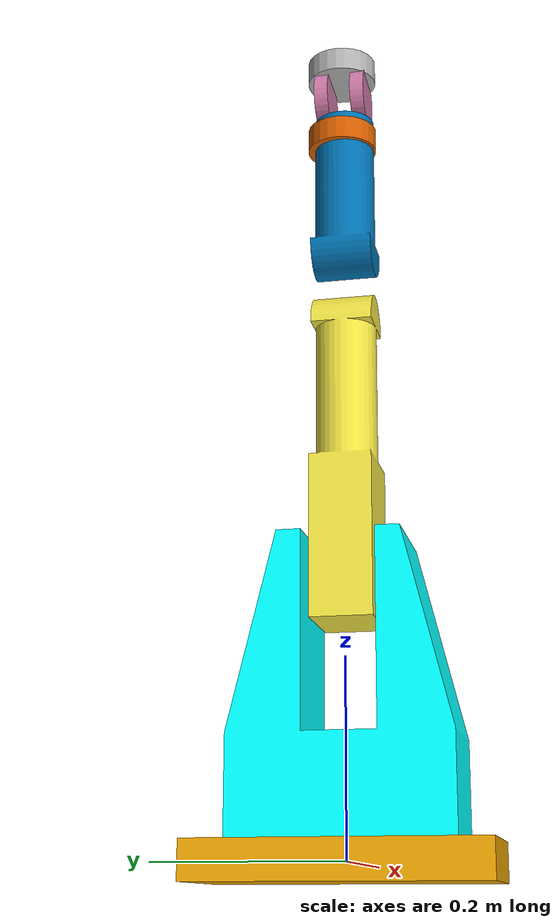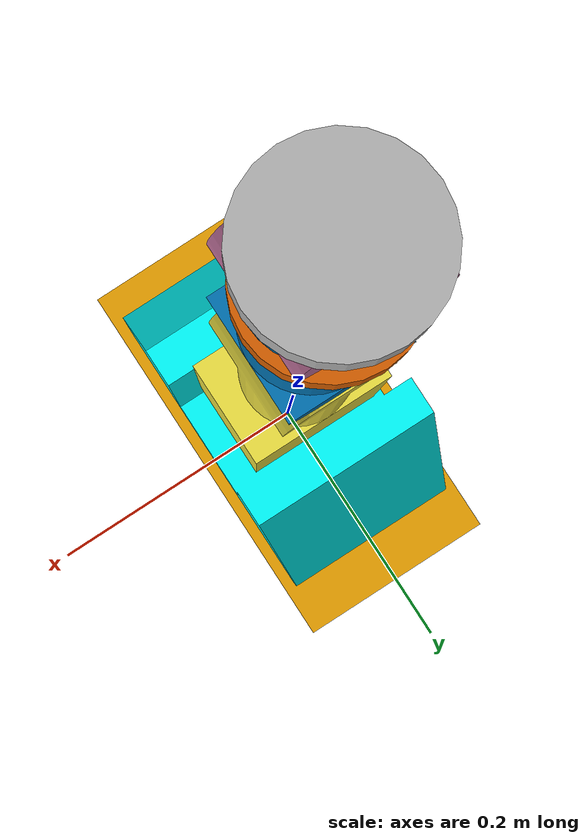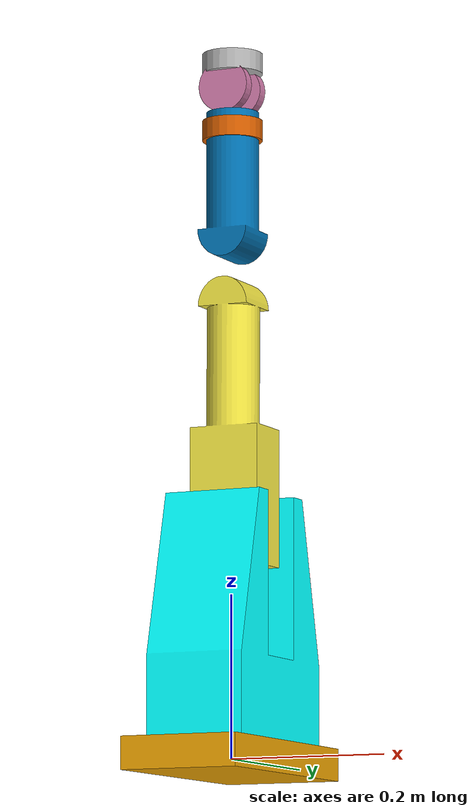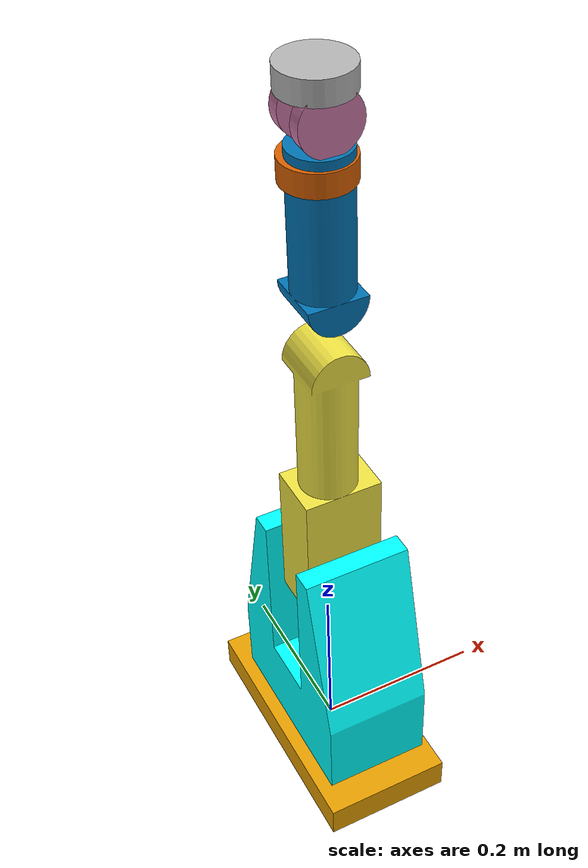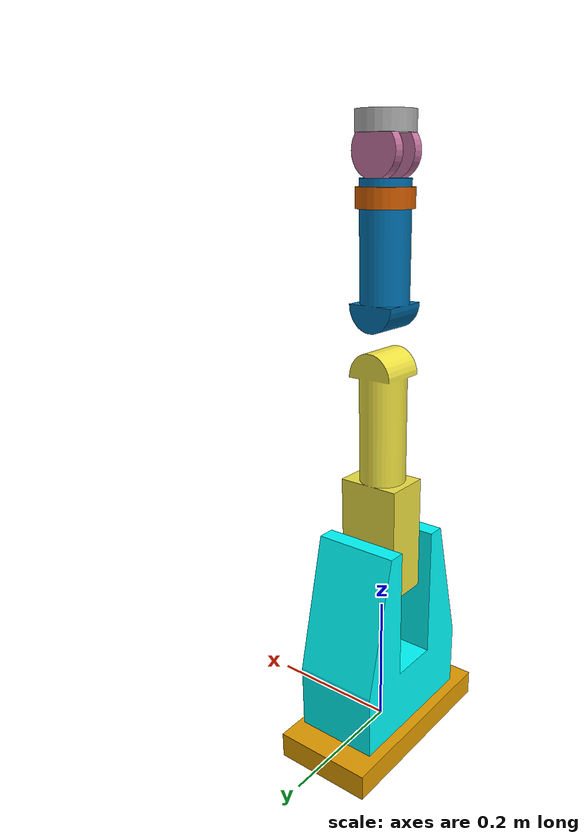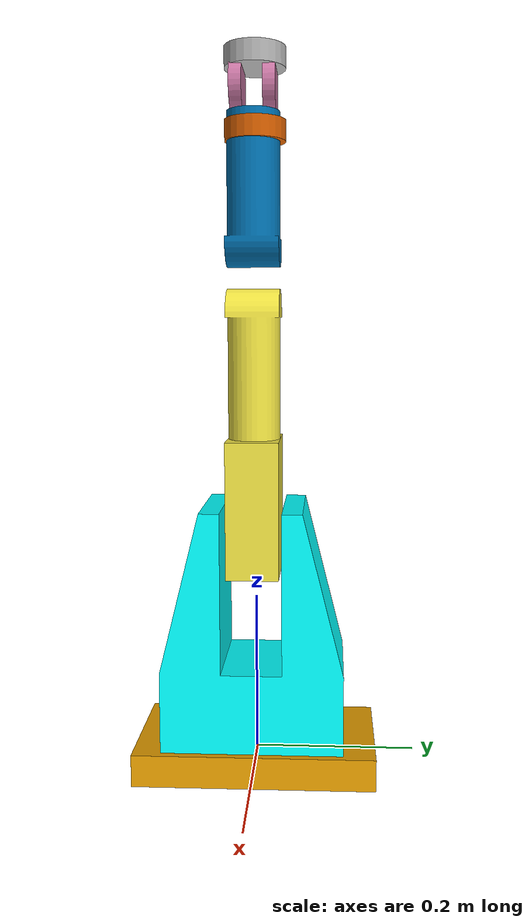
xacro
<?xml version="1.0"?>
<robot xmlns:xacro="http://www.ros.org/wiki/xacro" name="zebra_zero">
  <xacro:arg name="ros2_control_hardware_type" default="zebra" />
  <xacro:macro name="ros2_control" params="ros2_control_hardware_type">
    <xacro:if value="${ros2_control_hardware_type == 'mock_components'}">
      <plugin>mock_components/GenericSystem</plugin>
      <param name="calculate_dynamics">true</param>
    </xacro:if>
    <xacro:if value="${ros2_control_hardware_type == 'zebra'}">
      <plugin>zebra_zero/RobotSystem</plugin>
    </xacro:if>
  </xacro:macro>
  <link name="base_link">
    <visual>
      <origin rpy="0 0 0" xyz="0 0 0"/>
      <geometry>
        <box size="0.15 0.04 0.3" />
      </geometry>
    </visual>
    <collision>
      <origin rpy="0 0 0" xyz="0 0 0"/>
      <geometry>
        <box size="0.15 0.04 0.3" />
      </geometry>
    </collision>
    <inertial>
      <mass value="1"/>
      <inertia ixx="1.0" ixy="0.0" ixz="0.0" iyy="1.0" iyz="0.0" izz="1.0"/>
    </inertial>
  </link>
  <link name="world"/>
  <joint name="base_joint" type="fixed">
    <parent link="world"/>
    <child link="base_link"/>
    <origin rpy="-1.57 0 0" xyz="0 0 0"/>
    <axis xyz="0 0 1"/>
  </joint>
  <link name="first_link">
    <visual>
      <origin rpy="0 0 1.57" xyz="0.04 -0.05 -0.1"/>
      <geometry>
        <mesh filename="package://zebra_zero/urdf/ZebraBase.stl" scale="0.005 0.005 0.005"/>
      </geometry>
      <material name="blue">
        <color rgba="0 1.0 1.0 1.0"/>
      </material>
    </visual>
    <collision>
      <origin rpy="0 0 1.57" xyz="0.04 -0.05 -0.1"/>
      <geometry>
        <mesh filename="package://zebra_zero/urdf/ZebraBase.stl" scale="0.005 0.005 0.005"/>
      </geometry>
    </collision>
    <inertial>
      <mass value="1"/>
      <inertia ixx="1.0" ixy="0.0" ixz="0.0" iyy="1.0" iyz="0.0" izz="1.0"/>
    </inertial>
  </link>
  <joint name="first_joint" type="revolute">
    <parent link="base_link"/>
    <child link="first_link"/>
    <origin rpy="1.57 0 0" xyz="0 -0.045 0"/>
    <axis xyz="0 0 1"/>
    <limit effort="30" velocity="1.0" lower="-3.14" upper="3.14" />
  </joint>
  <link name="second_link">
    <visual>
      <origin rpy="-1.175 0 1.57" xyz="0.335 -0.05 -0.035"/>
      <geometry>
        <mesh filename="package://zebra_zero/urdf/ZebraLinkOne.stl" scale="0.005 0.005 0.005"/>
      </geometry>
    </visual>
    <collision>
      <origin rpy="-1.175 0 1.57" xyz="0.335 -0.05 -0.035"/>
      <geometry>
        <mesh filename="package://zebra_zero/urdf/ZebraLinkOne.stl" scale="0.005 0.005 0.005"/>
      </geometry>
    </collision>
    <inertial>
      <mass value="1"/>
      <inertia ixx="1.0" ixy="0.0" ixz="0.0" iyy="1.0" iyz="0.0" izz="1.0"/>
    </inertial>
  </link>
  <joint name="second_joint" type="revolute">
    <parent link="first_link"/>
    <child link="second_link"/>
    <origin rpy="0 0 0" xyz="0 0 0.24"/>
    <axis xyz="0 1 0"/>
    <limit effort="30" velocity="1.0" lower="-1.07" upper="1.7" />
  </joint>
  <link name="third_link">
    <visual>
      <origin rpy="3.14 0 1.57" xyz="0.21 -0.05 0.46"/>
      <geometry>
        <mesh filename="package://zebra_zero/urdf/ZebraLinkTwo.stl" scale="0.005 0.005 0.005"/>
      </geometry>
    </visual>
    <collision>
      <origin rpy="3.14 0 1.57" xyz="0.21 -0.05 0.46"/>
      <geometry>
        <mesh filename="package://zebra_zero/urdf/ZebraLinkTwo.stl" scale="0.005 0.005 0.005"/>
      </geometry>
    </collision>
    <inertial>
      <mass value="1"/>
      <inertia ixx="1.0" ixy="0.0" ixz="0.0" iyy="1.0" iyz="0.0" izz="1.0"/>
    </inertial>
  </link>
  <joint name="third_joint" type="revolute">
    <parent link="second_link"/>
    <child link="third_link"/>
    <origin rpy="0 0 0" xyz="0 0 0.30"/>
    <axis xyz="0 -1 0"/>
    <limit effort="30" velocity="1.0" lower="-1.7" upper="1.07" />
  </joint>
  <link name="fourth_link">
    <visual>
      <origin rpy="0 0 0" xyz="0 0 0"/>
      <geometry>
        <cylinder length="0.025" radius="0.0375"/>
      </geometry>
    </visual>
    <collision>
      <origin rpy="0 0 0" xyz="0 0 0"/>
      <geometry>
        <cylinder length="0.025" radius="0.0375"/>
      </geometry>
    </collision>
    <inertial>
      <mass value="1"/>
      <inertia ixx="1.0" ixy="0.0" ixz="0.0" iyy="1.0" iyz="0.0" izz="1.0"/>
    </inertial>
  </link>
  <joint name="fourth_joint" type="revolute">
    <parent link="third_link"/>
    <child link="fourth_link"/>
    <origin rpy="0 0 0" xyz="0 0 0.1925"/>
    <axis xyz="0 0 1"/>
    <limit effort="30" velocity="1.0" lower="-3.14" upper="3.14" />
  </joint>
  <link name="fifth_link">
    <visual>
      <origin rpy="0 0 0" xyz="-0.0475 0.2075 -0.21"/>
      <geometry>
        <mesh filename="package://zebra_zero/urdf/ZebraLinkThree.stl" scale="0.005 0.005 0.005"/>
      </geometry>
    </visual>
    <collision>
      <origin rpy="0 0 0" xyz="-0.0475 0.2075 -0.21"/>
      <geometry>
        <mesh filename="package://zebra_zero/urdf/ZebraLinkThree.stl" scale="0.005 0.005 0.005"/>
      </geometry>
    </collision>
    <inertial>
      <mass value="1"/>
      <inertia ixx="1.0" ixy="0.0" ixz="0.0" iyy="1.0" iyz="0.0" izz="1.0"/>
    </inertial>
  </link>
  <joint name="fifth_joint" type="revolute">
    <parent link="fourth_link"/>
    <child link="fifth_link"/>
    <origin rpy="0 0 0" xyz="0 0 0.045"/>
    <axis xyz="0 1 0"/>
    <limit effort="30" velocity="1.0" lower="-3.14" upper="3.14" />
  </joint>
  <link name="sixth_link">
    <visual>
      <origin rpy="0 0 0" xyz="0 0 0"/>
      <geometry>
        <cylinder length="0.025" radius="0.0375"/>
      </geometry>
    </visual>
    <collision>
      <origin rpy="0 0 0" xyz="0 0 0"/>
      <geometry>
        <cylinder length="0.025" radius="0.0375"/>
      </geometry>
    </collision>
    <inertial>
      <mass value="1"/>
      <inertia ixx="1.0" ixy="0.0" ixz="0.0" iyy="1.0" iyz="0.0" izz="1.0"/>
    </inertial>
  </link>
  <joint name="sixth_joint" type="revolute">
    <parent link="fifth_link"/>
    <child link="sixth_link"/>
    <origin rpy="0 0 0" xyz="0 0 0.04"/>
    <axis xyz="0 0 1"/>
    <limit effort="30" velocity="1.0" lower="-3.14" upper="3.14" />
  </joint>

  <ros2_control name="zebra_zero" type="system">
    <hardware>
      <xacro:ros2_control ros2_control_hardware_type="$(arg ros2_control_hardware_type)" />
    </hardware>
    <joint name="first_joint">
      <command_interface name="position">
        <param name="min">-3.14</param>
        <param name="max">3.14</param>
      </command_interface>
      <command_interface name="velocity">
        <param name="min">-1</param>
        <param name="max">1</param>
      </command_interface>
      <command_interface name="effort">
        <param name="min">-1</param>
        <param name="max">1</param>
      </command_interface>
      <state_interface name="position">
        <param name="initial_value">0.0</param>
      </state_interface>
      <state_interface name="velocity">
        <param name="initial_value">0.0</param>
      </state_interface>
    </joint>
    <joint name="second_joint">
      <command_interface name="position">
        <param name="min">-1.07</param>
        <param name="max">1.7</param>
      </command_interface>
      <command_interface name="velocity">
        <param name="min">-1</param>
        <param name="max">1</param>
      </command_interface>
      <command_interface name="effort">
        <param name="min">-1</param>
        <param name="max">1</param>
      </command_interface>
      <state_interface name="position">
        <param name="initial_value">1.57</param>
      </state_interface>
      <state_interface name="velocity">
        <param name="initial_value">0.0</param>
      </state_interface>
    </joint>
    <joint name="third_joint">
      <command_interface name="position">
        <param name="min">-1.7</param>
        <param name="max">1.07</param>
      </command_interface>
      <command_interface name="velocity">
        <param name="min">-1</param>
        <param name="max">1</param>
      </command_interface>
      <command_interface name="effort">
        <param name="min">-1</param>
        <param name="max">1</param>
      </command_interface>
      <state_interface name="position">
        <param name="initial_value">-1.57</param>
      </state_interface>
      <state_interface name="velocity">
        <param name="initial_value">0.0</param>
      </state_interface>
    </joint>
    <joint name="fourth_joint">
      <command_interface name="position">
        <param name="min">-3.14</param>
        <param name="max">3.14</param>
      </command_interface>
      <command_interface name="velocity">
        <param name="min">-1</param>
        <param name="max">1</param>
      </command_interface>
      <command_interface name="effort">
        <param name="min">-1</param>
        <param name="max">1</param>
      </command_interface>
      <state_interface name="position">
        <param name="initial_value">0.0</param>
      </state_interface>
      <state_interface name="velocity">
        <param name="initial_value">0.0</param>
      </state_interface>
    </joint>
    <joint name="fifth_joint">
      <command_interface name="position">
        <param name="min">-3.14</param>
        <param name="max">3.14</param>
      </command_interface>
      <command_interface name="velocity">
        <param name="min">-1</param>
        <param name="max">1</param>
      </command_interface>
      <command_interface name="effort">
        <param name="min">-1</param>
        <param name="max">1</param>
      </command_interface>
      <state_interface name="position">
        <param name="initial_value">-1.57</param>
      </state_interface>
      <state_interface name="velocity">
        <param name="initial_value">0.0</param>
      </state_interface>
    </joint>
    <joint name="sixth_joint">
      <command_interface name="position">
        <param name="min">-3.14</param>
        <param name="max">3.14</param>
      </command_interface>
      <command_interface name="velocity">
        <param name="min">-1</param>
        <param name="max">1</param>
      </command_interface>
      <command_interface name="effort">
        <param name="min">-1</param>
        <param name="max">1</param>
      </command_interface>
      <state_interface name="position">
        <param name="initial_value">0.0</param>
      </state_interface>
      <state_interface name="velocity">
        <param name="initial_value">0.0</param>
      </state_interface>
    </joint>
    <!-- additional joints ...-->
    <!-- additional hardware/sensors ...-->
  </ros2_control>
</robot>
